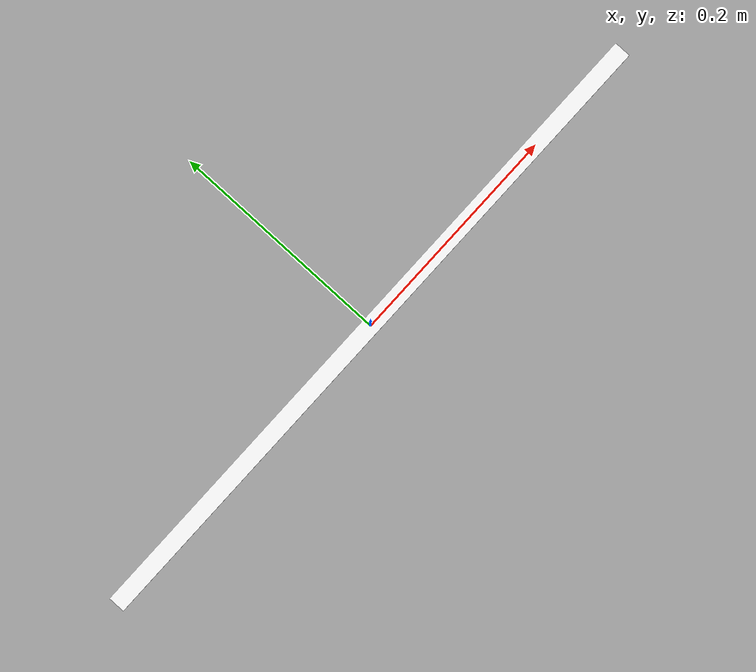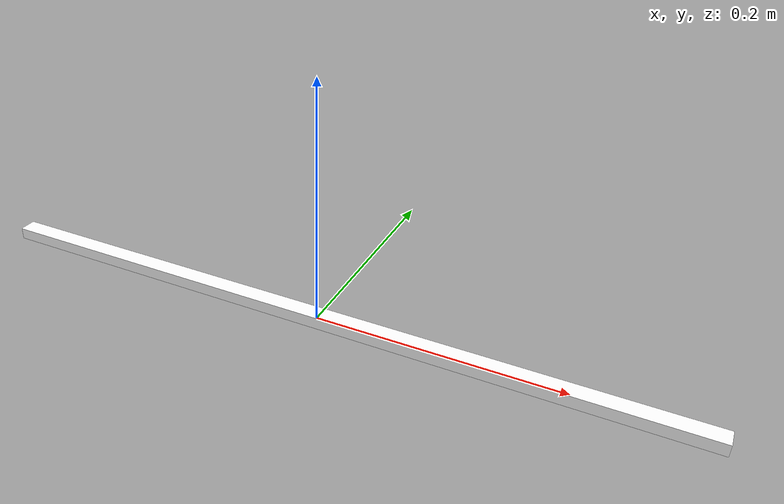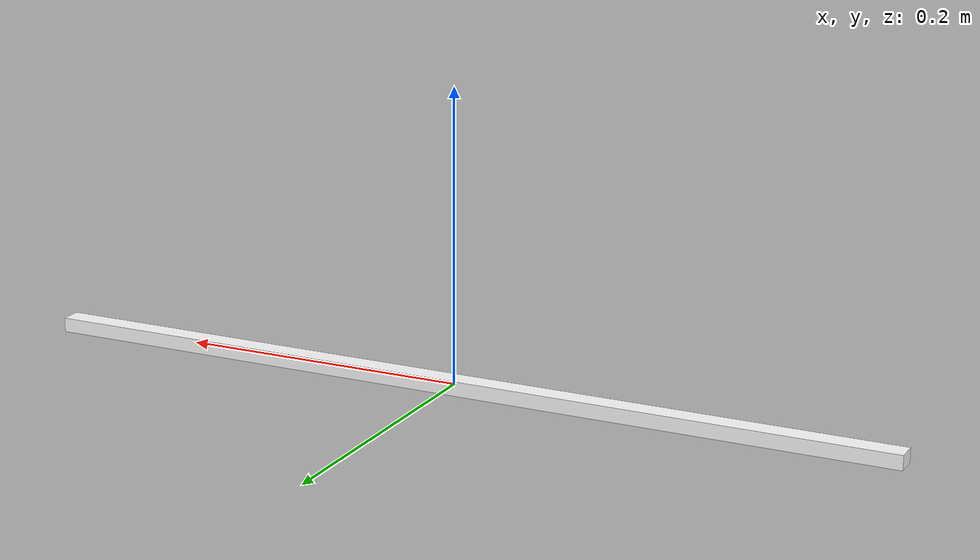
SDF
<?xml version="1.0"?>
<sdf version="1.6">
  <model name="rust_defect_wire">
    <link name="main">
      <pose frame="">0 0 0 0 0 0</pose>
      <visual name="main_Visual">
        <geometry>
          <box>
            <size>0.610 0.0150 0.01</size>
          </box>
        </geometry>
        <material>
          <ambient>1. 1.0 1. 1.0</ambient>
          <diffuse>1. 1.0 1. 1.0</diffuse>
          <specular>0.1 0.1 0.1 1.0</specular>
          <pbr>
            <metal>
              <albedo_map>
                model://rust_defect_wire/materials/textures/rust_defect_wire.png</albedo_map>
            </metal>
          </pbr>
        </material>
      </visual>
    </link>
    <static>1</static>
  </model>
</sdf>
